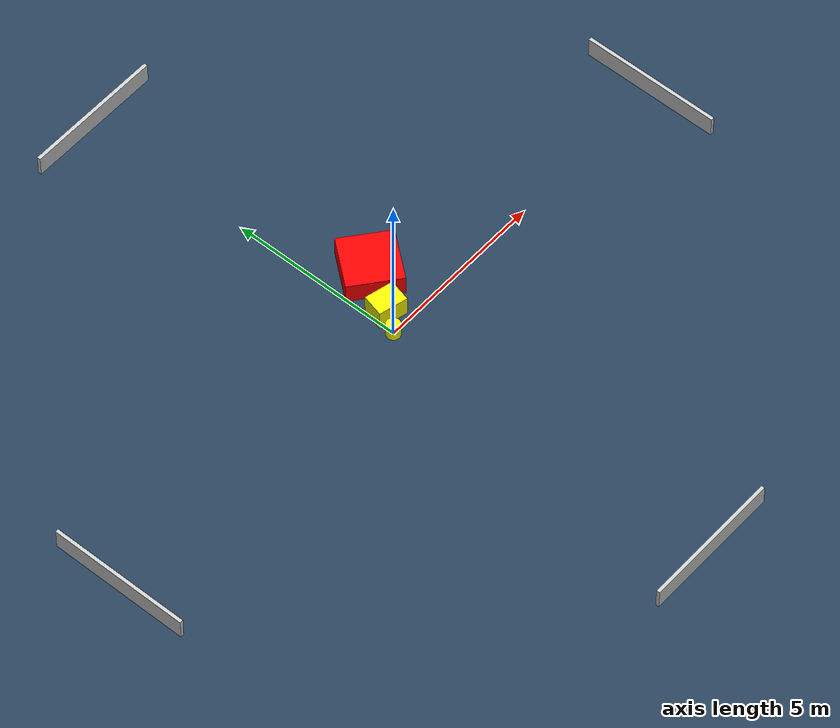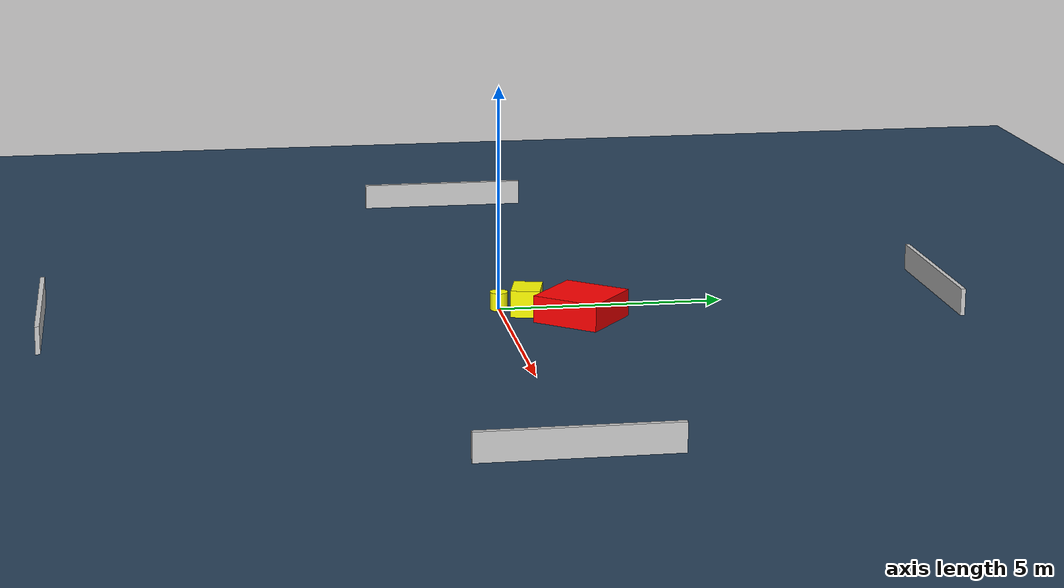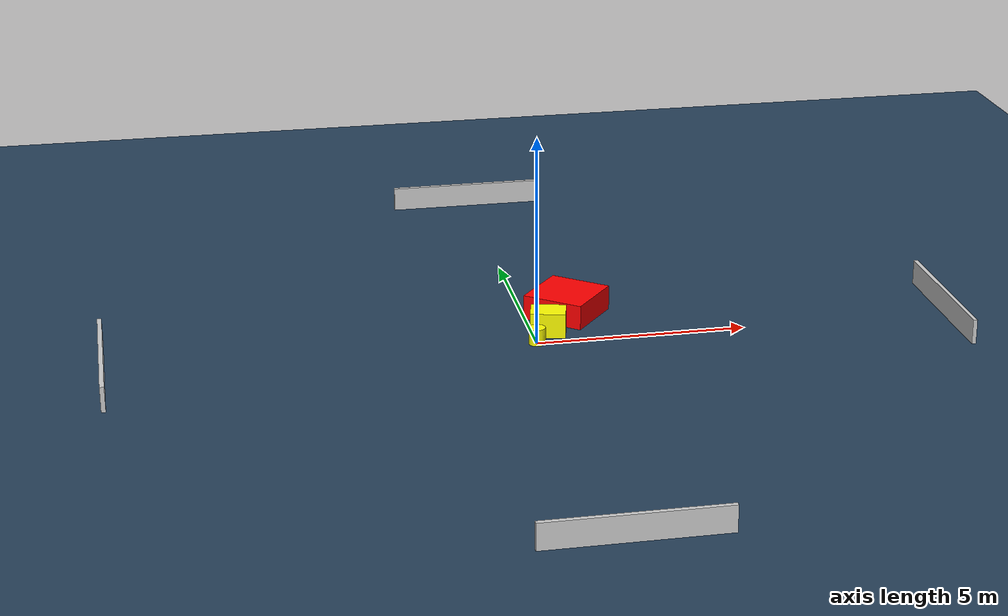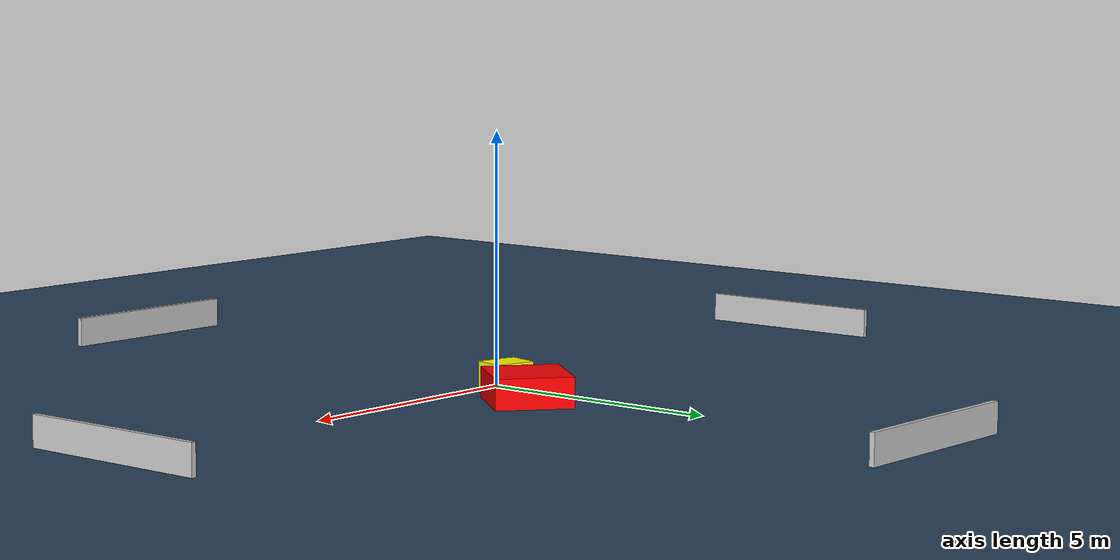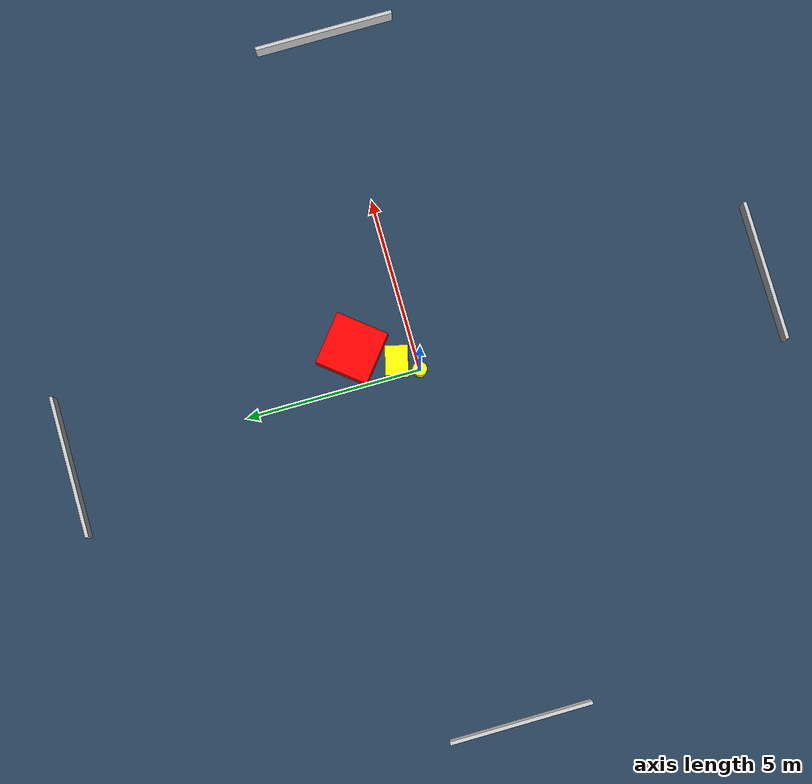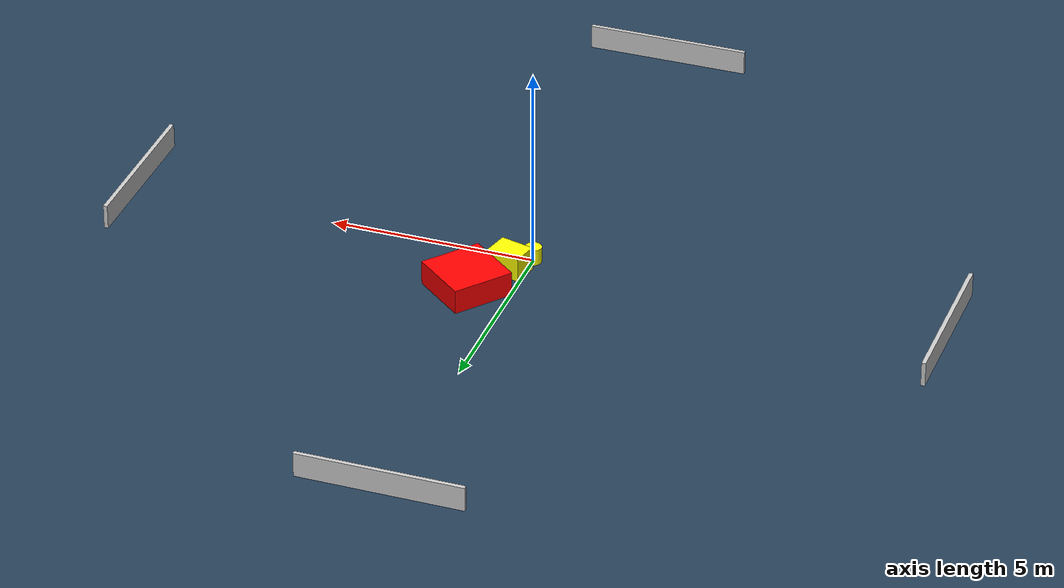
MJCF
<?xml version="1.0" ?>
<mujoco model="generated_environment">
  <option timestep="0.01" integrator="RK4" cone="elliptic"/>
  <default>
    <geom density="1"/>
  </default>
  <asset>
    <texture builtin="gradient" height="3072" name="skybox" rgb1="0.3 0.5 0.7" rgb2="0 0 0" type="skybox" width="512"/>
    <texture builtin="checker" height="300" name="groundplane" rgb1="0.2 0.3 0.4" rgb2="0.1 0.2 0.3" type="2d" width="300"/>
    <material name="groundplane" reflectance="0.2" texrepeat="5 5" texture="groundplane"/>
  </asset>
  <worldbody>
    <light dir="0 0 -1" directional="true" pos="0 0 1.5"/>
    <geom condim="3" friction="0.5 0.005 0.001" material="groundplane" name="floor" pos="0 0 0" size="0 0 0.05" type="plane"/>
    <body name="walls">
      <geom name="wall_1" condim="4" pos="-10.0 0.0 0.3" rgba="0.800000011920929 0.800000011920929 0.800000011920929 1.0" size="0.05 2.0 0.3" type="box"/>
      <geom name="wall_2" condim="4" pos="10.0 0.0 0.3" rgba="0.800000011920929 0.800000011920929 0.800000011920929 1.0" size="0.05 2.0 0.3" type="box"/>
      <geom name="wall_3" condim="4" pos="0.0 -10.0 0.3" rgba="0.800000011920929 0.800000011920929 0.800000011920929 1.0" size="2.0 0.05 0.3" type="box"/>
      <geom name="wall_4" condim="4" pos="0.0 10.0 0.3" rgba="0.800000011920929 0.800000011920929 0.800000011920929 1.0" size="2.0 0.05 0.3" type="box"/>
    </body>
    <body name="robot">
      <joint name="joint_x" type="slide" pos="0 0 0" axis="1 0 0"/>
      <joint name="joint_y" type="slide" pos="0 0 0" axis="0 1 0"/>
      <geom name="robot" type="cylinder" pos="0.0 0.0 0.2" size="0.2 0.2 0.0" mass="5.0" friction="1.0 0.005 0.0001" condim="4" rgba="1.0 1.0 0.0 1.0"/>
    </body>
    <body name="obstacle_1_movable">
      <geom name="obstacle_1_movable" condim="4" pos="0.37811030503821896 0.5627106755446868 0.3" euler="0 0 166.0597943624294" friction="0.0 0.005 0.001" rgba="1.0 1.0 0.0 1.0" size="0.4178287916380601 0.31924530266769313 0.3" type="box" mass="0.1"/>
      <joint type="free"/>
    </body>
    <body name="obstacle_2_static">
      <geom name="obstacle_2_static" condim="4" pos="1.046760185757887 1.6614553344825798 0.3" euler="0 0 141.21447415678864" friction="0.0 0.005 0.001" rgba="1.0 0.0 0.0 1.0" size="0.7587675876272948 0.7641288761499412 0.3" type="box"/>
    </body>
  </worldbody>
  <actuator>
    <motor name="actuator_x" joint="joint_x" gear="1" ctrlrange="-1 1"/>
    <motor name="actuator_y" joint="joint_y" gear="1" ctrlrange="-1 1"/>
  </actuator>
</mujoco>
